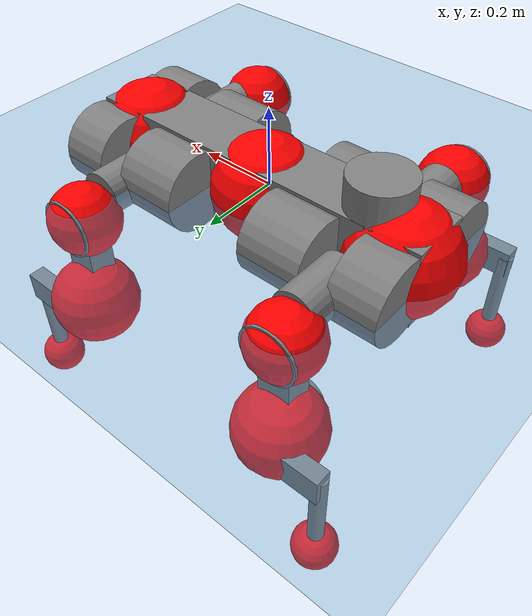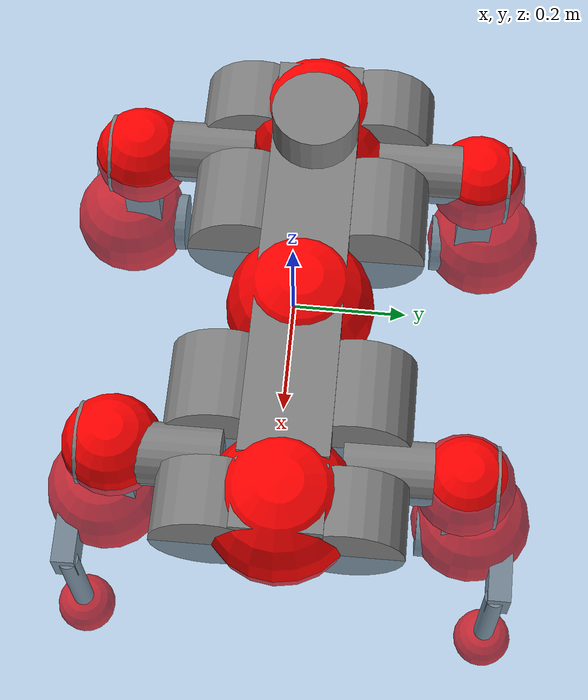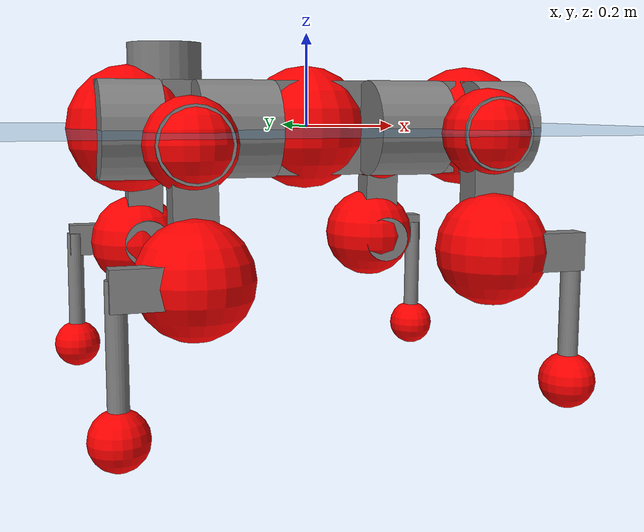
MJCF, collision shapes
<mujoco model="anymal_c">
  <compiler angle="radian" assetdir="assets" balanceinertia="true" inertiafromgeom="false"/>

  <option timestep="0.005" density="1.2" viscosity="2e-05"/>

  <size nkey="1"/>

  <visual>
    <quality shadowsize="8192"/>
    <map shadowclip="0.5"/>
  </visual>

  <default>
    <default class="/">
      <material specular="0" shininess="0.25"/>
      <geom contype="0" conaffinity="0" group="1" solref="-1000 -80"/>
      <site size="0.01 0.005 0.005" group="5"/>
      <general forcelimited="true" forcerange="-80 80" biastype="affine" gainprm="80" biasprm="0 -80 -2"/>
      <default class="anymal_c">
        <joint armature="0.01" damping="0.01" frictionloss="0.1"/>
        <default class="visual">
          <geom type="mesh" group="2"/>
          <default class="visual_zflip"/>
        </default>
        <default class="collision">
          <geom type="cylinder" group="3"/>
          <default class="foot">
            <geom size="0.03 0 0" type="sphere" condim="6" priority="1" friction="0.8 0.02 0.01" solimp="0.015 1 0.03"/>
          </default>
        </default>
      </default>
      <default class="reward_collision_sphere">
        <geom group="5" rgba="1 0 0 1"/>
      </default>
    </default>
  </default>

  <asset>
    <texture type="skybox" colorspace="auto" name="//unnamed_texture_0" builtin="gradient" rgb1="0.95 0.95 0.95" rgb2="0.95 0.95 0.95" width="100" height="600"/>
    <texture type="2d" colorspace="auto" name="texplane" builtin="checker" rgb1="0.345 0.575 0.748" rgb2="0.345 0.575 0.748" markrgb="1 1 1" width="512" height="512"/>
    <texture type="2d" colorspace="linear" name="base" file="base.png"/>
    <texture type="2d" colorspace="linear" name="top_shell" file="top_shell.png"/>
    <texture type="2d" colorspace="linear" name="bottom_shell" file="bottom_shell.png"/>
    <texture type="2d" colorspace="linear" name="remote" file="remote.png"/>
    <texture type="2d" colorspace="linear" name="hatch" file="hatch.png"/>
    <texture type="2d" colorspace="linear" name="handle" file="handle.png"/>
    <texture type="2d" colorspace="linear" name="face" file="face.png"/>
    <texture type="2d" colorspace="linear" name="battery" file="battery.png"/>
    <texture type="2d" colorspace="linear" name="lidar_cage" file="lidar_cage.png"/>
    <texture type="2d" colorspace="linear" name="depth_camera" file="depth_camera.png"/>
    <texture type="2d" colorspace="linear" name="wide_angle_camera" file="wide_angle_camera.png"/>
    <texture type="2d" colorspace="linear" name="lidar" file="lidar.png"/>
    <texture type="2d" colorspace="linear" name="drive" file="drive.png"/>
    <texture type="2d" colorspace="linear" name="hip_l" file="hip_l.png"/>
    <texture type="2d" colorspace="linear" name="shank_l" file="shank_l.png"/>
    <texture type="2d" colorspace="linear" name="foot" file="foot.png"/>
    <texture type="2d" colorspace="linear" name="thigh" file="thigh.png"/>
    <texture type="2d" colorspace="linear" name="shank_r" file="shank_r.png"/>
    <texture type="2d" colorspace="linear" name="hip_r" file="hip_r.png"/>
    <material name="MatPlane" class="/" texture="texplane" texuniform="true" texrepeat="2 2" specular="0.9" shininess="0.5"/>
    <material name="black_plastic" class="/" rgba="0.007 0.007 0.007 1"/>
    <material name="green" class="/" rgba="0.052 0.178 0.033 1"/>
    <material name="red" class="/" rgba="0.178 0.006 0.005 1"/>
    <material name="yellow" class="/" rgba="0.178 0.119 0.006 1"/>
    <material name="lwl" class="/" rgba="0.8 0.8 0.8 1"/>
    <material name="base" class="/" texture="base"/>
    <material name="top_shell" class="/" texture="top_shell"/>
    <material name="bottom_shell" class="/" texture="bottom_shell"/>
    <material name="hip_l" class="/" texture="hip_l"/>
    <material name="thigh" class="/" texture="thigh"/>
    <material name="shank_l" class="/" texture="shank_l"/>
    <material name="foot" class="/" texture="foot"/>
    <material name="hip_r" class="/" texture="hip_r"/>
    <material name="shank" class="/" texture="shank_r"/>
    <material name="hatch" class="/" texture="hatch"/>
    <material name="remote" class="/" texture="remote"/>
    <material name="handle" class="/" texture="handle"/>
    <material name="face" class="/" texture="face"/>
    <material name="depth_camera" class="/" texture="depth_camera"/>
    <material name="wide_angle_camera" class="/" texture="wide_angle_camera"/>
    <material name="battery" class="/" texture="battery"/>
    <material name="lidar_cage" class="/" texture="lidar_cage"/>
    <material name="lidar" class="/" texture="lidar"/>
    <material name="drive" class="/" texture="drive"/>
    <mesh name="base_0" class="/" file="base_0.obj"/>
    <mesh name="base_1" class="/" file="base_1.obj"/>
    <mesh name="base_2" class="/" file="base_2.obj"/>
    <mesh name="base_3" class="/" file="base_3.obj"/>
    <mesh name="base_4" class="/" file="base_4.obj"/>
    <mesh name="base_5" class="/" file="base_5.obj"/>
    <mesh name="top_shell" class="/" file="top_shell.obj"/>
    <mesh name="bottom_shell" class="/" file="bottom_shell.obj"/>
    <mesh name="remote" class="/" file="remote.obj"/>
    <mesh name="handle" class="/" file="handle.obj"/>
    <mesh name="face" class="/" file="face.obj"/>
    <mesh name="wide_angle_camera" class="/" file="wide_angle_camera.obj"/>
    <mesh name="depth_camera" class="/" file="depth_camera.obj"/>
    <mesh name="battery" class="/" file="battery.obj"/>
    <mesh name="lidar_cage" class="/" file="lidar_cage.obj"/>
    <mesh name="lidar" class="/" file="lidar.obj"/>
    <mesh name="drive" class="/" file="drive.obj"/>
    <mesh name="hip_l" class="/" file="hip_l.obj"/>
    <mesh name="thigh" class="/" file="thigh.obj"/>
    <mesh name="shank_l" class="/" file="shank_l.obj"/>
    <mesh name="foot" class="/" file="foot.obj"/>
    <mesh name="hip_r" class="/" file="hip_r.obj"/>
    <mesh name="hatch" class="/" file="hatch.obj"/>
    <mesh name="shank_r" class="/" file="shank_r.obj"/>
  </asset>

  <worldbody>
    <geom name="floor" class="/" size="100 100 0.125" type="plane" group="0" material="MatPlane"/>
    <light name="toplight_shadow" class="/" pos="0 0 5" dir="0.0990148 0.0990148 -0.990148" type="directional" ambient="0.04 0.04 0.04" diffuse="0.55 0.55 0.55" specular="0.12 0.12 0.12"/>
    <light name="toplight_fill" class="/" pos="0 0 5" dir="0.0990148 0.0990148 -0.990148" type="directional" castshadow="false" ambient="0.04 0.04 0.04" diffuse="0.3 0.3 0.3" specular="0.08 0.08 0.08"/>
    <body name="trunk" childclass="anymal_c" pos="-0.000388489 0.0119098 -0.00225241" quat="1 3.72271e-05 8.23861e-05 2.17971e-05">
      <inertial pos="-0.00364505 0.0126624 0.042677" quat="0.468311 0.447879 0.548451 0.52848" mass="26.638" diaginertia="0.302425 8.8664 0.0845141"/>
      <joint name="//unnamed_joint_0" type="free" armature="0" damping="0" frictionloss="0"/>
      <geom name="//unnamed_geom_1" class="visual" material="green" mesh="base_0"/>
      <geom name="//unnamed_geom_2" class="visual" material="yellow" mesh="base_1"/>
      <geom name="//unnamed_geom_3" class="visual" material="red" mesh="base_2"/>
      <geom name="//unnamed_geom_4" class="visual" material="black_plastic" mesh="base_3"/>
      <geom name="//unnamed_geom_5" class="visual" material="lwl" mesh="base_4"/>
      <geom name="//unnamed_geom_6" class="visual" material="base" mesh="base_5"/>
      <geom name="trunk_1" class="collision" size="0.322026 0.0777304 0.0999391" type="box"/>
      <geom name="trunk_2" class="collision" size="0.0999391 0.0805065" pos="0.183161 0.116237 0" quat="0.707107 0 0.707107 0"/>
      <geom name="trunk_3" class="collision" size="0.0999391 0.0805065" pos="-0.183161 0.116237 0" quat="0.707107 0 0.707107 0"/>
      <geom name="trunk_4" class="collision" size="0.0999391 0.0805065" pos="0.183161 -0.116237 0" quat="0.707107 0 0.707107 0"/>
      <geom name="trunk_5" class="collision" size="0.0999391 0.0805065" pos="-0.183161 -0.116237 0" quat="0.707107 0 0.707107 0"/>
      <geom name="//unnamed_geom_12" class="visual" material="top_shell" mesh="top_shell"/>
      <geom name="//unnamed_geom_13" class="visual" material="bottom_shell" mesh="bottom_shell"/>
      <geom name="//unnamed_geom_14" class="visual" material="remote" mesh="remote"/>
      <geom name="//unnamed_geom_15" class="visual" material="handle" mesh="handle"/>
      <geom name="//unnamed_geom_16" class="visual" pos="0.349058 0 0" quat="1 0 0 0" material="face" mesh="face"/>
      <geom name="trunk_6" class="collision" size="0.0610739 0.0777304 0.0999391" pos="0.395374 0 0" type="box"/>
      <geom name="//unnamed_geom_18" class="collision" size="0.0999391 0.0610739" pos="0.395374 0.116237 0" quat="0.707107 0 0.707107 0"/>
      <geom name="//unnamed_geom_19" class="collision" size="0.0999391 0.0610739" pos="0.395374 -0.116237 0" quat="0.707107 0 0.707107 0"/>
      <geom name="//unnamed_geom_20" class="visual" pos="0.388763 0 -0.0240947" quat="0.965926 0 0.258819 0" material="depth_camera" mesh="depth_camera"/>
      <geom name="//unnamed_geom_21" class="visual" pos="0.432006 0 0.0124051" material="wide_angle_camera" mesh="wide_angle_camera"/>
      <geom name="//unnamed_geom_22" class="visual_zflip" pos="-0.349058 0 0" quat="0 0 0 1" material="face" mesh="face"/>
      <geom name="trunk_7" class="collision" size="0.0610739 0.0777304 0.0999391" pos="-0.395374 0 0" quat="0 0 0 1" type="box"/>
      <geom name="//unnamed_geom_24" class="collision" size="0.0999391 0.0610739" pos="-0.395374 -0.116237 0" quat="0 -0.707107 0 0.707107"/>
      <geom name="//unnamed_geom_25" class="collision" size="0.0999391 0.0610739" pos="-0.395374 0.116237 0" quat="0 -0.707107 0 0.707107"/>
      <geom name="//unnamed_geom_26" class="visual" pos="-0.388763 0 -0.0240947" quat="0 -0.258819 0 0.965926" material="depth_camera" mesh="depth_camera"/>
      <geom name="//unnamed_geom_27" class="visual_zflip" pos="-0.432006 0 0.0124051" quat="0 0 0 1" material="wide_angle_camera" mesh="wide_angle_camera"/>
      <geom name="//unnamed_geom_28" class="visual" material="battery" mesh="battery"/>
      <geom name="//unnamed_geom_29" class="visual" pos="0 0.137702 0.0241749" quat="0.683013 -0.183013 0.183013 0.683013" material="depth_camera" mesh="depth_camera"/>
      <geom name="//unnamed_geom_30" class="visual" pos="0 -0.137702 0.0241749" quat="0.683013 0.183013 0.183013 -0.683013" material="depth_camera" mesh="depth_camera"/>
      <geom name="//unnamed_geom_31" class="visual" pos="-0.306531 0 0.0609068" quat="1 0 0 0" material="lidar_cage" mesh="lidar_cage"/>
      <geom name="trunk_8" class="collision" size="0.0777304 0.0666261" pos="-0.306531 0 0.110627"/>
      <geom name="//unnamed_geom_33" class="visual" pos="-0.306531 0.00032153 0.117836" quat="0.707107 0 0 -0.707107" material="lidar" mesh="lidar"/>
      <geom name="//unnamed_geom_34" class="visual" pos="0.252551 0.172399 1.43497e-08" quat="0.258819 0.965926 0 0" material="drive" mesh="drive"/>
      <geom name="//unnamed_geom_35" class="visual" pos="0.252551 -0.172399 -1.43497e-08" quat="0.258819 -0.965926 0 0" material="drive" mesh="drive"/>
      <geom name="//unnamed_geom_36" class="visual" pos="-0.252551 0.172399 -1.43497e-08" quat="0 0 0.965926 -0.258819" material="drive" mesh="drive"/>
      <geom name="//unnamed_geom_37" class="visual" pos="-0.252551 -0.172399 1.43497e-08" quat="0 0 -0.965926 -0.258819" material="drive" mesh="drive"/>
      <geom name="//unnamed_geom_38" class="visual" pos="0.0976856 0 0.0604924" quat="1 0 0 0" material="hatch" mesh="hatch"/>
      <geom name="//unnamed_geom_39" class="reward_collision_sphere" size="0.133252"/>
      <geom name="//unnamed_geom_40" class="reward_collision_sphere" size="0.133252" pos="0.378953 0 0"/>
      <geom name="//unnamed_geom_41" class="reward_collision_sphere" size="0.133252" pos="-0.378953 0 0"/>
      <site name="imu" pos="0.151655 -0.0320692 0.0978187" size="0.0111043"/>
      <camera name="track" pos="0 -3.32105 0" quat="0.707107 0.707107 0 0" mode="trackcom"/>
      <camera name="ego_camera" pos="0.378953 0 -0.0331465" quat="-0.5 -0.5 0.5 0.5"/>
      <body name="LF_HIP" pos="0.242207 0.156566 -0.0138528" quat="0.254865 0.966966 0.00448603 -0.00114048">
        <inertial pos="0.0510967 -0.0260046 -0.0152402" quat="-0.11707 0.708747 -0.130119 0.683404" mass="4.40924" diaginertia="0.00243212 0.0678249 0.0012328"/>
        <joint name="LF_HAA" pos="0 0 0" axis="1 1.64642e-05 0.000972618" range="-1.04892 0.315148" armature="0.0124963" damping="0.0680851" frictionloss="0.0528263"/>
        <geom name="//unnamed_geom_42" class="visual" pos="0 0.000844126 -0.000138647" quat="0.258819 -0.965926 0 0" material="hip_l" mesh="hip_l"/>
        <geom name="//unnamed_geom_43" class="visual" pos="0.0504428 -0.0716022 -0.0351867" quat="0.183013 -0.683013 0.683013 0.183013" material="drive" mesh="drive"/>
        <geom name="//unnamed_geom_44" class="collision" size="0.0555217 0.0777304" pos="0.0504428 -0.0198595 -0.00572192" quat="-0.353553 -0.612372 0.612372 -0.353553"/>
        <body name="LF_THIGH" pos="0.0506561 -0.136742 -0.0305371" quat="0.185627 -0.686069 0.679276 0.182854">
          <inertial pos="0.0149749 -0.00956683 -0.207003" quat="0.99766 -0.0357054 -0.0448076 0.0373031" mass="4.19408" diaginertia="0.0122044 0.37439 0.00172207"/>
          <joint name="LF_HFE" pos="0 0 0" axis="0.99815 -0.0596576 -0.0117097" stiffness="0.00136171" range="-3.30112 2.8489" armature="0.00415153" damping="0" frictionloss="0.0736316"/>
          <geom name="//unnamed_geom_45" class="visual" pos="-0.0162831 -2.56583e-05 0" quat="0.707107 0 0 -0.707107" material="thigh" mesh="thigh"/>
          <geom name="//unnamed_geom_46" class="collision" size="0.0721782 0.0444174" pos="0.0336847 0 0" quat="0.5 0.5 -0.5 -0.5"/>
          <geom name="//unnamed_geom_47" class="collision" size="0.0416413 0.033313 0.15692" pos="0.0252635 0 -0.117102" quat="0.707107 0 0 -0.707107" type="box"/>
          <geom name="//unnamed_geom_48" class="visual" pos="0.0844644 0 -0.236169" quat="1 0 0 0" material="drive" mesh="drive"/>
          <geom name="//unnamed_geom_49" class="collision" size="0.0555217 0.0777304" pos="0.0255162 0 -0.236169" quat="0.707107 0 0.707107 0"/>
          <geom name="//unnamed_geom_50" class="reward_collision_sphere" size="0.0888348" pos="0.0210529 0 0"/>
          <body name="LF_SHANK" pos="0.090442 0.0143962 -0.229444" quat="0.99999 -0.00013914 0.00113173 -0.00421745">
            <inertial pos="-0.00560866 -0.101062 -0.0511381" quat="0.9931 -0.11487 -0.00100326 -0.02358" mass="0.838277" diaginertia="0.00495276 0.0952325 0.000522762"/>
            <joint name="LF_KFE" pos="0 0 0" axis="0.999999 -0.00085029 0.00124818" stiffness="0.00187601" range="-2.83092 3.13989" armature="0.0163401" damping="0.0129521" frictionloss="0.106587"/>
            <geom name="//unnamed_geom_51" class="visual" pos="-0.00530955 -0.0283108 0" quat="0.707107 0 0 -0.707107" material="shank_l" mesh="shank_l"/>
            <geom name="LF_kfe_act" class="collision" size="0.0666261 0.0222087" pos="0.0168423 0 0" quat="0.5 0.5 -0.5 -0.5"/>
            <geom name="//unnamed_geom_53" class="collision" size="0.0638489 0.0374772 0.0210983" pos="0.0168423 -0.0954784 0" quat="0.5 0.5 -0.5 -0.5" type="box"/>
            <geom name="//unnamed_geom_54" class="visual" pos="0.0109909 -0.155166 -0.280063" quat="0.382683 0 0 -0.92388" material="foot" mesh="foot"/>
            <geom name="LF_calf" class="collision" size="0.0194326 0.156851" pos="0.0109896 -0.146043 -0.140032" quat="0.707107 0 0 -0.707107"/>
            <geom name="LF_foot" class="foot" size="0.032125" pos="0.0109896 -0.146043 -0.261418" quat="0.707107 0 0 -0.707107"/>
            <geom name="//unnamed_geom_57" class="reward_collision_sphere" size="0.111043" pos="-0.0421059 0 0"/>
            <geom name="//unnamed_geom_58" class="reward_collision_sphere" size="0.0555217" pos="0.0109896 -0.146043 -0.261418"/>
            <site name="LF_foot" class="foot" pos="0.0109896 -0.146043 -0.261418" quat="0.707107 0 0 -0.707107" size="0.0111043"/>
          </body>
        </body>
      </body>
      <body name="RF_HIP" pos="0.252561 -0.164593 0.00735906" quat="0.258208 -0.966089 -0.000609196 0.00035907">
        <inertial pos="0.0544011 0.0208148 -0.0116393" quat="0.13886 0.675205 0.123274 0.713877" mass="4.32971" diaginertia="0.00259092 0.072973 0.00105968"/>
        <joint name="RF_HAA" pos="0 0 0" axis="0.998679 -0.0290691 -0.0423804" stiffness="0.0313931" range="-0.49843 0.738713" armature="0.00830778" damping="0" frictionloss="0.0754008"/>
        <geom name="//unnamed_geom_59" class="visual" pos="0 -0.000844119 -0.000138647" quat="0.258819 0.965926 0 0" material="hip_r" mesh="hip_r"/>
        <geom name="//unnamed_geom_60" class="visual" pos="0.0504429 0.0716022 -0.0351867" quat="0.183013 0.683013 0.683013 -0.183013" material="drive" mesh="drive"/>
        <geom name="//unnamed_geom_61" class="collision" size="0.0555217 0.0777304" pos="0.0504428 0.0198595 -0.00572192" quat="-0.353553 0.612372 0.612372 0.353553"/>
        <body name="RF_THIGH" pos="0.0360595 0.104575 -0.0439732" quat="0.180405 0.685429 0.681727 -0.181353">
          <inertial pos="0.0342478 0.0160628 -0.201955" quat="0.990899 -0.00202259 -0.0495378 0.125143" mass="3.04955" diaginertia="0.0104971 0.318935 0.00149355"/>
          <joint name="RF_HFE" pos="0 0 0" axis="0.999922 0.00207411 0.012345" stiffness="0.0329378" range="-2.84502 3.14012" armature="0.00963828" damping="0" frictionloss="0.110533"/>
          <geom name="//unnamed_geom_62" class="visual" pos="-0.0162831 -2.56583e-05 0" quat="0.707107 0 0 -0.707107" material="thigh" mesh="thigh"/>
          <geom name="//unnamed_geom_63" class="collision" size="0.0721782 0.0444174" pos="0.0336847 0 0" quat="0.5 0.5 0.5 0.5"/>
          <geom name="//unnamed_geom_64" class="collision" size="0.0416413 0.033313 0.15692" pos="0.0252635 0 -0.117102" quat="0.707107 0 0 0.707107" type="box"/>
          <geom name="//unnamed_geom_65" class="visual" pos="0.0844644 0 -0.236169" quat="1 0 0 0" material="drive" mesh="drive"/>
          <geom name="//unnamed_geom_66" class="collision" size="0.0555217 0.0777304" pos="0.0255162 0 -0.236169" quat="0.707107 0 0.707107 0"/>
          <geom name="//unnamed_geom_67" class="reward_collision_sphere" size="0.0888348" pos="0.0210529 0 0"/>
          <body name="RF_SHANK" pos="0.0994152 -0.00179847 -0.226441" quat="0.999978 -0.00331587 -0.00172937 0.00547404">
            <inertial pos="-0.00214982 0.1024 -0.0775404" quat="0.995127 0.0909779 -0.0377023 0.00494938" mass="0.789383" diaginertia="0.00408766 0.118472 0.000407672"/>
            <joint name="RF_KFE" pos="0 0 0" axis="0.99687 -0.0677045 0.0408192" stiffness="0.0366712" range="-3.20687 3.14586" armature="0.00367265" damping="0" frictionloss="0.183893"/>
            <geom name="//unnamed_geom_68" class="visual" pos="-0.00530952 0.0283107 0" quat="0.707107 0 0 0.707107" material="shank" mesh="shank_r"/>
            <geom name="RF_kfe_act" class="collision" size="0.0666261 0.0222087" pos="0.0168423 0 0" quat="0.5 0.5 0.5 0.5"/>
            <geom name="//unnamed_geom_70" class="collision" size="0.0638489 0.0374772 0.0210983" pos="0.0168423 0.0954784 0" quat="0.5 0.5 0.5 0.5" type="box"/>
            <geom name="//unnamed_geom_71" class="visual" pos="0.0109883 0.155166 -0.280063" quat="0.382683 0 0 0.92388" material="foot" mesh="foot"/>
            <geom name="RF_calf" class="collision" size="0.0194326 0.156851" pos="0.0109896 0.146043 -0.140032" quat="0.707107 0 0 0.707107"/>
            <geom name="RF_foot" class="foot" size="0.0410509" pos="0.0109896 0.146043 -0.261418" quat="0.707107 0 0 0.707107"/>
            <geom name="//unnamed_geom_74" class="reward_collision_sphere" size="0.111043" pos="-0.0421059 0 0"/>
            <geom name="//unnamed_geom_75" class="reward_collision_sphere" size="0.0555217" pos="0.0109896 0.146043 -0.261418"/>
            <site name="RF_foot" class="foot" pos="0.0109896 0.146043 -0.261418" quat="0.707107 0 0 0.707107" size="0.0111043"/>
          </body>
        </body>
      </body>
      <body name="LH_HIP" pos="-0.254992 0.175753 -0.00207278" quat="0.00287145 5.65995e-05 0.966262 -0.257547">
        <inertial pos="0.0480166 0.0380204 -0.0157824" quat="0.134437 0.669115 0.153721 0.71455" mass="3.21393" diaginertia="0.00227145 0.0564924 0.00116431"/>
        <joint name="LH_HAA" pos="0 0 0" axis="0.999652 -0.023399 0.0121529" stiffness="0.0246979" range="-0.583515 0.865173" armature="0.0109923" damping="0.00871347" frictionloss="0.0882632"/>
        <geom name="//unnamed_geom_76" class="visual" pos="0 -0.000844119 -0.000138647" quat="-0.258819 -0.965926 0 0" material="hip_r" mesh="hip_r"/>
        <geom name="//unnamed_geom_77" class="visual" pos="0.0504429 0.0716022 -0.0351867" quat="0.183013 0.683013 0.683013 -0.183013" material="drive" mesh="drive"/>
        <geom name="//unnamed_geom_78" class="collision" size="0.0555217 0.0777304" pos="0.0504428 0.0198595 -0.00572192" quat="-0.353553 0.612372 0.612372 0.353553"/>
        <body name="LH_THIGH" pos="0.0602922 0.118191 -0.0199345" quat="0.181537 0.682841 0.683133 -0.184668">
          <inertial pos="0.0264422 0.00240623 -0.188662" quat="0.993879 -0.0148084 -0.0372241 0.102951" mass="3.06476" diaginertia="0.0124947 0.313919 0.00153988"/>
          <joint name="LH_HFE" pos="0 0 0" axis="0.999805 0.00883288 0.0176532" stiffness="0.00875464" range="-2.9032 2.94278" armature="0.0145753" damping="0.0737882" frictionloss="0.124072"/>
          <geom name="//unnamed_geom_79" class="visual" pos="-0.0162831 -2.56583e-05 0" quat="0.707107 0 0 -0.707107" material="thigh" mesh="thigh"/>
          <geom name="//unnamed_geom_80" class="collision" size="0.0721782 0.0444174" pos="0.0336847 0 0" quat="0.5 0.5 -0.5 -0.5"/>
          <geom name="//unnamed_geom_81" class="collision" size="0.0416413 0.033313 0.15692" pos="0.0252635 0 -0.117102" quat="0.707107 0 0 -0.707107" type="box"/>
          <geom name="//unnamed_geom_82" class="visual" pos="0.0844644 0 -0.236169" quat="1 0 0 0" material="drive" mesh="drive"/>
          <geom name="//unnamed_geom_83" class="collision" size="0.0555217 0.0777304" pos="0.0255162 0 -0.236169" quat="0.707107 0 0.707107 0"/>
          <geom name="//unnamed_geom_84" class="reward_collision_sphere" size="0.0888348" pos="0.0210529 0 0"/>
          <body name="LH_SHANK" pos="0.0939709 0.0162113 -0.239916" quat="0.999997 0.000915679 -0.000246558 0.00223414">
            <inertial pos="0.00682298 0.101533 -0.0636783" quat="0.993395 0.111818 0.00503427 0.0252578" mass="0.622406" diaginertia="0.00315232 0.10453 0.000388823"/>
            <joint name="LH_KFE" pos="0 0 0" axis="0.998614 0.0496393 0.0175122" range="-3.45632 3.37376" armature="0.0108115" damping="0.0463391" frictionloss="0.113219"/>
            <geom name="//unnamed_geom_85" class="visual" pos="-0.00530952 0.0283107 0" quat="-0.707107 0 0 -0.707107" material="shank" mesh="shank_r"/>
            <geom name="LH_kfe_act" class="collision" size="0.0666261 0.0222087" pos="0.0168423 0 0" quat="0.5 0.5 -0.5 -0.5"/>
            <geom name="//unnamed_geom_87" class="collision" size="0.0638489 0.0374772 0.0210983" pos="0.0168423 0.0954784 0" quat="0.5 0.5 -0.5 -0.5" type="box"/>
            <geom name="//unnamed_geom_88" class="visual" pos="0.0109883 0.155166 -0.280063" quat="-0.382683 0 0 -0.92388" material="foot" mesh="foot"/>
            <geom name="LH_calf" class="collision" size="0.0194326 0.156851" pos="0.0109896 0.146043 -0.140032" quat="0.707107 0 0 -0.707107"/>
            <geom name="LH_foot" class="foot" size="0.0248449" pos="0.0109896 0.146043 -0.261418" quat="0.707107 0 0 -0.707107"/>
            <geom name="//unnamed_geom_91" class="reward_collision_sphere" size="0.111043" pos="-0.0421059 0 0"/>
            <geom name="//unnamed_geom_92" class="reward_collision_sphere" size="0.0555217" pos="0.0109896 0.146043 -0.261418"/>
            <site name="LH_foot" class="foot" pos="0.0109896 0.146043 -0.261418" quat="0.707107 0 0 -0.707107" size="0.0111043"/>
          </body>
        </body>
      </body>
      <body name="RH_HIP" pos="-0.258485 -0.169765 0.0051948" quat="0.00233952 0.00218758 -0.967401 -0.253231">
        <inertial pos="0.0424779 -0.0384426 0.00342906" quat="-0.131047 0.724529 -0.142904 0.66141" mass="3.31331" diaginertia="0.00187508 0.0502793 0.000932215"/>
        <joint name="RH_HAA" pos="0 0 0" axis="0.997695 0.0651385 -0.0190142" range="-0.660923 0.776854" armature="0.0105992" damping="0.0361666" frictionloss="0.0967201"/>
        <geom name="//unnamed_geom_93" class="visual" pos="0 0.000844126 -0.000138647" quat="-0.258819 0.965926 0 0" material="hip_l" mesh="hip_l"/>
        <geom name="//unnamed_geom_94" class="visual" pos="0.0504428 -0.0716022 -0.0351867" quat="-0.183013 0.683013 -0.683013 -0.183013" material="drive" mesh="drive"/>
        <geom name="//unnamed_geom_95" class="collision" size="0.0555217 0.0777304" pos="0.0504428 -0.0198595 -0.00572192" quat="0.353553 0.612372 -0.612372 0.353553"/>
        <body name="RH_THIGH" pos="0.0503851 -0.131497 -0.0417807" quat="-0.188805 0.680396 -0.684658 -0.180713">
          <inertial pos="0.0269352 0.014156 -0.213098" quat="0.990955 -0.00212158 -0.102688 0.0863689" mass="4.62914" diaginertia="0.0139566 0.417639 0.00183018"/>
          <joint name="RH_HFE" pos="0 0 0" axis="0.997329 -0.0133178 0.0718193" stiffness="0.0333207" range="-3.21232 2.95884" armature="0.0117899" damping="0" frictionloss="0.0895663"/>
          <geom name="//unnamed_geom_96" class="visual" pos="-0.0162831 -2.56583e-05 0" quat="0.707107 0 0 -0.707107" material="thigh" mesh="thigh"/>
          <geom name="//unnamed_geom_97" class="collision" size="0.0721782 0.0444174" pos="0.0336847 0 0" quat="0.5 0.5 0.5 0.5"/>
          <geom name="//unnamed_geom_98" class="collision" size="0.0416413 0.033313 0.15692" pos="0.0252635 0 -0.117102" quat="0.707107 0 0 0.707107" type="box"/>
          <geom name="//unnamed_geom_99" class="visual" pos="0.0844644 0 -0.236169" quat="1 0 0 0" material="drive" mesh="drive"/>
          <geom name="//unnamed_geom_100" class="collision" size="0.0555217 0.0777304" pos="0.0255162 0 -0.236169" quat="0.707107 0 0.707107 0"/>
          <geom name="//unnamed_geom_101" class="reward_collision_sphere" size="0.0888348" pos="0.0210529 0 0"/>
          <body name="RH_SHANK" pos="0.101433 -0.00477085 -0.239976" quat="0.999992 -0.00345075 -0.00110255 0.00160829">
            <inertial pos="-0.0118854 -0.101993 -0.0612922" quat="0.994692 -0.100581 0.021239 -0.00440784" mass="0.820921" diaginertia="0.00353051 0.124542 0.000412939"/>
            <joint name="RH_KFE" pos="0 0 0" axis="0.997295 -0.0148591 -0.0719898" stiffness="0.042621" range="-2.88037 2.84983" armature="0.0188055" damping="0.00443696" frictionloss="0.110335"/>
            <geom name="//unnamed_geom_102" class="visual" pos="-0.00530955 -0.0283108 0" quat="0.707107 0 0 -0.707107" material="shank_l" mesh="shank_l"/>
            <geom name="RH_kfe_act" class="collision" size="0.0666261 0.0222087" pos="0.0168423 0 0" quat="0.5 0.5 0.5 0.5"/>
            <geom name="//unnamed_geom_104" class="collision" size="0.0638489 0.0374772 0.0210983" pos="0.0168423 -0.0954784 0" quat="0.5 0.5 0.5 0.5" type="box"/>
            <geom name="//unnamed_geom_105" class="visual" pos="0.0109909 -0.155166 -0.280063" quat="0.382683 0 0 -0.92388" material="foot" mesh="foot"/>
            <geom name="RH_calf" class="collision" size="0.0194326 0.156851" pos="0.0109896 -0.146043 -0.140032" quat="0.707107 0 0 0.707107"/>
            <geom name="RH_foot" class="foot" size="0.0447608" pos="0.0109896 -0.146043 -0.261418" quat="0.707107 0 0 0.707107"/>
            <geom name="//unnamed_geom_108" class="reward_collision_sphere" size="0.111043" pos="-0.0421059 0 0"/>
            <geom name="//unnamed_geom_109" class="reward_collision_sphere" size="0.0555217" pos="0.0109896 -0.146043 -0.261418"/>
            <site name="RH_foot" class="foot" pos="0.0109896 -0.146043 -0.261418" quat="0.707107 0 0 0.707107" size="0.0111043"/>
          </body>
        </body>
      </body>
    </body>
  </worldbody>

  <contact>
    <pair class="/" geom1="floor" geom2="LF_foot" name="//unnamed_contact_0"/>
    <pair class="/" geom1="floor" geom2="RF_foot" name="//unnamed_contact_1"/>
    <pair class="/" geom1="floor" geom2="LH_foot" name="//unnamed_contact_2"/>
    <pair class="/" geom1="floor" geom2="RH_foot" name="//unnamed_contact_3"/>
  </contact>

  <actuator>
    <general name="LF_HAA" class="/" joint="LF_HAA" forcerange="-34.4704 34.4704" gainprm="56.351" biasprm="0 -56.351 -1.84784"/>
    <general name="LF_HFE" class="/" joint="LF_HFE" forcerange="-123.971 123.971" gainprm="56.351" biasprm="0 -56.351 -1.84784"/>
    <general name="LF_KFE" class="/" joint="LF_KFE" forcerange="-108.177 108.177" gainprm="56.351" biasprm="0 -56.351 -1.84784"/>
    <general name="RF_HAA" class="/" joint="RF_HAA" forcerange="-40.0574 40.0574" gainprm="56.351" biasprm="0 -56.351 -1.84784"/>
    <general name="RF_HFE" class="/" joint="RF_HFE" forcerange="-39.945 39.945" gainprm="56.351" biasprm="0 -56.351 -1.84784"/>
    <general name="RF_KFE" class="/" joint="RF_KFE" forcerange="-54.355 54.355" gainprm="56.351" biasprm="0 -56.351 -1.84784"/>
    <general name="LH_HAA" class="/" joint="LH_HAA" forcerange="-104.56 104.56" gainprm="56.351" biasprm="0 -56.351 -1.84784"/>
    <general name="LH_HFE" class="/" joint="LH_HFE" forcerange="-79.1837 79.1837" gainprm="56.351" biasprm="0 -56.351 -1.84784"/>
    <general name="LH_KFE" class="/" joint="LH_KFE" forcerange="-120.241 120.241" gainprm="56.351" biasprm="0 -56.351 -1.84784"/>
    <general name="RH_HAA" class="/" joint="RH_HAA" forcerange="-140.291 140.291" gainprm="56.351" biasprm="0 -56.351 -1.84784"/>
    <general name="RH_HFE" class="/" joint="RH_HFE" forcerange="-99.1914 99.1914" gainprm="56.351" biasprm="0 -56.351 -1.84784"/>
    <general name="RH_KFE" class="/" joint="RH_KFE" forcerange="-86.896 86.896" gainprm="56.351" biasprm="0 -56.351 -1.84784"/>
  </actuator>

  <sensor>
    <gyro site="imu" name="imu_angular_velocity"/>
    <velocimeter site="imu" name="imu_linear_velocity"/>
    <framelinvel objtype="site" objname="LF_foot" name="LF_foot_global_linear_velocity"/>
    <framelinvel objtype="site" objname="RF_foot" name="RF_foot_global_linear_velocity"/>
    <framelinvel objtype="site" objname="LH_foot" name="LH_foot_global_linear_velocity"/>
    <framelinvel objtype="site" objname="RH_foot" name="RH_foot_global_linear_velocity"/>
  </sensor>

  <keyframe>
    <key name="home" qpos="0 0 0.55 1 0 0 0 0 0.4 -0.8 0 -0.4 0.8 0 -0.4 0.8 0 0.4 -0.8"/>
  </keyframe>
</mujoco>
